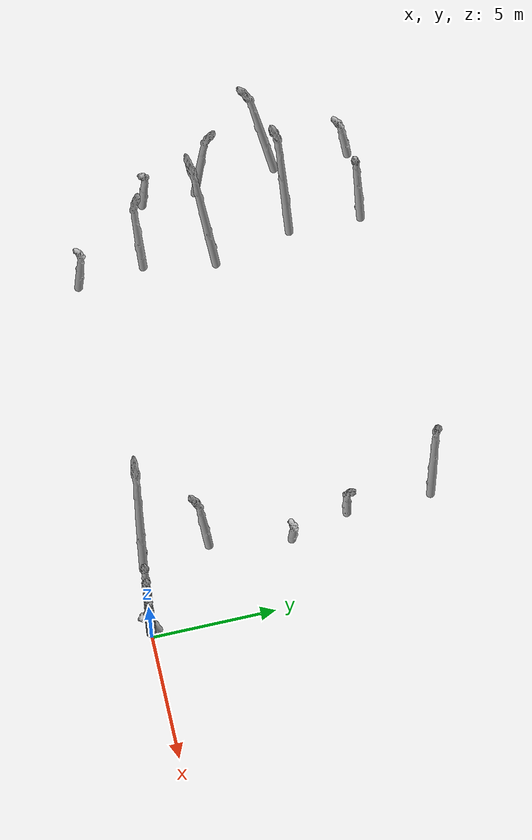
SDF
<sdf version="1.6">
 <world name="default">
  <model name="asparagus_16">
   <pose>-2.80659 0.235628 0 0.02262 0.093811 -3.13579</pose>
   <static>1</static>
   <link name="asparagus_16">
    <visual name="visual">
     <geometry>
      <mesh><uri>model://Asparagus/meshes/asparagus.obj</uri><scale>0.4 0.4 0.559083</scale></mesh>
     </geometry>
    </visual>
    <collision name="collision">
     <geometry>
      <mesh><uri>model://Asparagus/meshes/asparagus.obj</uri><scale>0.4 0.4 0.559083</scale></mesh>
     </geometry>
    </collision>
   </link>
  </model>
  <model name="asparagus_18">
   <pose>-17.7726 3.28789 0 -0.066418 -0.045655 -1.25904</pose>
   <static>1</static>
   <link name="asparagus_18">
    <visual name="visual">
     <geometry>
      <mesh><uri>model://Asparagus/meshes/asparagus.obj</uri><scale>0.4 0.4 0.215047</scale></mesh>
     </geometry>
    </visual>
    <collision name="collision">
     <geometry>
      <mesh><uri>model://Asparagus/meshes/asparagus.obj</uri><scale>0.4 0.4 0.215047</scale></mesh>
     </geometry>
    </collision>
   </link>
  </model>
  <model name="asparagus_19">
   <pose>-3.20755 2.90293 0 -0.093809 -0.000767 -2.08216</pose>
   <static>1</static>
   <link name="asparagus_19">
    <visual name="visual">
     <geometry>
      <mesh><uri>model://Asparagus/meshes/asparagus.obj</uri><scale>0.4 0.4 0.515257</scale></mesh>
     </geometry>
    </visual>
    <collision name="collision">
     <geometry>
      <mesh><uri>model://Asparagus/meshes/asparagus.obj</uri><scale>0.4 0.4 0.515257</scale></mesh>
     </geometry>
    </collision>
   </link>
  </model>
  <model name="asparagus_21">
   <pose>-17.8188 5.71823 0 -0.03023 0.088462 1.49563</pose>
   <static>1</static>
   <link name="asparagus_21">
    <visual name="visual">
     <geometry>
      <mesh><uri>model://Asparagus/meshes/asparagus.obj</uri><scale>0.4 0.4 0.30633</scale></mesh>
     </geometry>
    </visual>
    <collision name="collision">
     <geometry>
      <mesh><uri>model://Asparagus/meshes/asparagus.obj</uri><scale>0.4 0.4 0.30633</scale></mesh>
     </geometry>
    </collision>
   </link>
  </model>
  <model name="asparagus_22">
   <pose>-2.79717 6.21891 0 0.069859 -0.037461 -2.60703</pose>
   <static>1</static>
   <link name="asparagus_22">
    <visual name="visual">
     <geometry>
      <mesh><uri>model://Asparagus/meshes/asparagus.obj</uri><scale>0.4 0.4 0.091202</scale></mesh>
     </geometry>
    </visual>
    <collision name="collision">
     <geometry>
      <mesh><uri>model://Asparagus/meshes/asparagus.obj</uri><scale>0.4 0.4 0.091202</scale></mesh>
     </geometry>
    </collision>
   </link>
  </model>
  <model name="asparagus_24">
   <pose>-18.1484 8.92605 0 -0.004855 0.11762 -1.50476</pose>
   <static>1</static>
   <link name="asparagus_24">
    <visual name="visual">
     <geometry>
      <mesh><uri>model://Asparagus/meshes/asparagus.obj</uri><scale>0.4 0.4 0.49884</scale></mesh>
     </geometry>
    </visual>
    <collision name="collision">
     <geometry>
      <mesh><uri>model://Asparagus/meshes/asparagus.obj</uri><scale>0.4 0.4 0.49884</scale></mesh>
     </geometry>
    </collision>
   </link>
  </model>
  <model name="asparagus_25">
   <pose>-3.24492 8.76295 0 0.163788 -0.027184 1.316</pose>
   <static>1</static>
   <link name="asparagus_25">
    <visual name="visual">
     <geometry>
      <mesh><uri>model://Asparagus/meshes/asparagus.obj</uri><scale>0.4 0.4 0.403691</scale></mesh>
     </geometry>
    </visual>
    <collision name="collision">
     <geometry>
      <mesh><uri>model://Asparagus/meshes/asparagus.obj</uri><scale>0.4 0.4 0.403691</scale></mesh>
     </geometry>
    </collision>
   </link>
  </model>
  <model name="asparagus_27">
   <pose>-18.2442 12.0421 0 -0.078734 0.0665 -2.2874</pose>
   <static>1</static>
   <link name="asparagus_27">
    <visual name="visual">
     <geometry>
      <mesh><uri>model://Asparagus/meshes/asparagus.obj</uri><scale>0.4 0.4 0.202021</scale></mesh>
     </geometry>
    </visual>
    <collision name="collision">
     <geometry>
      <mesh><uri>model://Asparagus/meshes/asparagus.obj</uri><scale>0.4 0.4 0.202021</scale></mesh>
     </geometry>
    </collision>
   </link>
  </model>
  <model name="asparagus_28">
   <pose>-3.17023 12.0849 0 -0.027316 -0.131638 0.067962</pose>
   <static>1</static>
   <link name="asparagus_28">
    <visual name="visual">
     <geometry>
      <mesh><uri>model://Asparagus/meshes/asparagus.obj</uri><scale>0.4 0.4 0.356701</scale></mesh>
     </geometry>
    </visual>
    <collision name="collision">
     <geometry>
      <mesh><uri>model://Asparagus/meshes/asparagus.obj</uri><scale>0.4 0.4 0.356701</scale></mesh>
     </geometry>
    </collision>
   </link>
  </model>
  <model name="asparagus_45">
   <pose>-14.9297 0.02466 0 0.205452 -0.084747 -1.88087</pose>
   <static>1</static>
   <link name="asparagus_45">
    <visual name="visual">
     <geometry>
      <mesh><uri>model://Asparagus/meshes/asparagus.obj</uri><scale>0.4 0.4 0.147883</scale></mesh>
     </geometry>
    </visual>
    <collision name="collision">
     <geometry>
      <mesh><uri>model://Asparagus/meshes/asparagus.obj</uri><scale>0.4 0.4 0.147883</scale></mesh>
     </geometry>
    </collision>
   </link>
  </model>
  <model name="asparagus_46">
   <pose>-0.13464 0.248518 0 0.107476 0.083987 -0.565875</pose>
   <static>1</static>
   <link name="asparagus_46">
    <visual name="visual">
     <geometry>
      <mesh><uri>model://Asparagus/meshes/asparagus.obj</uri><scale>0.4 0.4 0.187958</scale></mesh>
     </geometry>
    </visual>
    <collision name="collision">
     <geometry>
      <mesh><uri>model://Asparagus/meshes/asparagus.obj</uri><scale>0.4 0.4 0.187958</scale></mesh>
     </geometry>
    </collision>
   </link>
  </model>
  <model name="asparagus_48">
   <pose>-15.1796 2.99558 0 -0.154281 0.034167 1.94156</pose>
   <static>1</static>
   <link name="asparagus_48">
    <visual name="visual">
     <geometry>
      <mesh><uri>model://Asparagus/meshes/asparagus.obj</uri><scale>0.4 0.4 0.289704</scale></mesh>
     </geometry>
    </visual>
    <collision name="collision">
     <geometry>
      <mesh><uri>model://Asparagus/meshes/asparagus.obj</uri><scale>0.4 0.4 0.289704</scale></mesh>
     </geometry>
    </collision>
   </link>
  </model>
  <model name="asparagus_51">
   <pose>-14.7179 5.79196 0 -0.061422 0.037823 -2.77273</pose>
   <static>1</static>
   <link name="asparagus_51">
    <visual name="visual">
     <geometry>
      <mesh><uri>model://Asparagus/meshes/asparagus.obj</uri><scale>0.4 0.4 0.584796</scale></mesh>
     </geometry>
    </visual>
    <collision name="collision">
     <geometry>
      <mesh><uri>model://Asparagus/meshes/asparagus.obj</uri><scale>0.4 0.4 0.584796</scale></mesh>
     </geometry>
    </collision>
   </link>
  </model>
  <model name="asparagus_54">
   <pose>-15.2652 8.93684 0 0.071525 -0.002104 -0.921355</pose>
   <static>1</static>
   <link name="asparagus_54">
    <visual name="visual">
     <geometry>
      <mesh><uri>model://Asparagus/meshes/asparagus.obj</uri><scale>0.4 0.4 0.546899</scale></mesh>
     </geometry>
    </visual>
    <collision name="collision">
     <geometry>
      <mesh><uri>model://Asparagus/meshes/asparagus.obj</uri><scale>0.4 0.4 0.546899</scale></mesh>
     </geometry>
    </collision>
   </link>
  </model>
  <model name="asparagus_57">
   <pose>-15.2153 11.9705 0 0.062086 -0.028528 -0.370075</pose>
   <static>1</static>
   <link name="asparagus_57">
    <visual name="visual">
     <geometry>
      <mesh><uri>model://Asparagus/meshes/asparagus.obj</uri><scale>0.4 0.4 0.342744</scale></mesh>
     </geometry>
    </visual>
    <collision name="collision">
     <geometry>
      <mesh><uri>model://Asparagus/meshes/asparagus.obj</uri><scale>0.4 0.4 0.342744</scale></mesh>
     </geometry>
    </collision>
   </link>
  </model>
  <model name="asparagus_63">
   <static>1</static>
   <link name="asparagus_63">
    <visual name="visual">
     <geometry>
      <mesh><uri>model://Asparagus/meshes/asparagus.obj</uri><scale>0.4 0.4 0.090556</scale></mesh>
     </geometry>
    </visual>
    <collision name="collision">
     <geometry>
      <mesh><uri>model://Asparagus/meshes/asparagus.obj</uri><scale>0.4 0.4 0.090556</scale></mesh>
     </geometry>
    </collision>
   </link>
  </model>
  <model name="asparagus_64">
   <static>1</static>
   <link name="asparagus_64">
    <visual name="visual">
     <geometry>
      <mesh><uri>model://Asparagus/meshes/asparagus.obj</uri><scale>0.4 0.4 0.480404</scale></mesh>
     </geometry>
    </visual>
    <collision name="collision">
     <geometry>
      <mesh><uri>model://Asparagus/meshes/asparagus.obj</uri><scale>0.4 0.4 0.480404</scale></mesh>
     </geometry>
    </collision>
   </link>
  </model>
  <model name="asparagus_65">
   <static>1</static>
   <link name="asparagus_65">
    <visual name="visual">
     <geometry>
      <mesh><uri>model://Asparagus/meshes/asparagus.obj</uri><scale>0.4 0.4 0.312895</scale></mesh>
     </geometry>
    </visual>
    <collision name="collision">
     <geometry>
      <mesh><uri>model://Asparagus/meshes/asparagus.obj</uri><scale>0.4 0.4 0.312895</scale></mesh>
     </geometry>
    </collision>
   </link>
  </model>
  <model name="asparagus_66">
   <static>1</static>
   <link name="asparagus_66">
    <visual name="visual">
     <geometry>
      <mesh><uri>model://Asparagus/meshes/asparagus.obj</uri><scale>0.4 0.4 0.400207</scale></mesh>
     </geometry>
    </visual>
    <collision name="collision">
     <geometry>
      <mesh><uri>model://Asparagus/meshes/asparagus.obj</uri><scale>0.4 0.4 0.400207</scale></mesh>
     </geometry>
    </collision>
   </link>
  </model>
  <model name="asparagus_67">
   <static>1</static>
   <link name="asparagus_67">
    <visual name="visual">
     <geometry>
      <mesh><uri>model://Asparagus/meshes/asparagus.obj</uri><scale>0.4 0.4 0.350702</scale></mesh>
     </geometry>
    </visual>
    <collision name="collision">
     <geometry>
      <mesh><uri>model://Asparagus/meshes/asparagus.obj</uri><scale>0.4 0.4 0.350702</scale></mesh>
     </geometry>
    </collision>
   </link>
  </model>
  <model name="asparagus_68">
   <static>1</static>
   <link name="asparagus_68">
    <visual name="visual">
     <geometry>
      <mesh><uri>model://Asparagus/meshes/asparagus.obj</uri><scale>0.4 0.4 0.42996</scale></mesh>
     </geometry>
    </visual>
    <collision name="collision">
     <geometry>
      <mesh><uri>model://Asparagus/meshes/asparagus.obj</uri><scale>0.4 0.4 0.42996</scale></mesh>
     </geometry>
    </collision>
   </link>
  </model>
  <model name="asparagus_69">
   <static>1</static>
   <link name="asparagus_69">
    <visual name="visual">
     <geometry>
      <mesh><uri>model://Asparagus/meshes/asparagus.obj</uri><scale>0.4 0.4 0.211601</scale></mesh>
     </geometry>
    </visual>
    <collision name="collision">
     <geometry>
      <mesh><uri>model://Asparagus/meshes/asparagus.obj</uri><scale>0.4 0.4 0.211601</scale></mesh>
     </geometry>
    </collision>
   </link>
  </model>
  <model name="asparagus_70">
   <static>1</static>
   <link name="asparagus_70">
    <visual name="visual">
     <geometry>
      <mesh><uri>model://Asparagus/meshes/asparagus.obj</uri><scale>0.4 0.4 0.259019</scale></mesh>
     </geometry>
    </visual>
    <collision name="collision">
     <geometry>
      <mesh><uri>model://Asparagus/meshes/asparagus.obj</uri><scale>0.4 0.4 0.259019</scale></mesh>
     </geometry>
    </collision>
   </link>
  </model>
  <model name="asparagus_71">
   <static>1</static>
   <link name="asparagus_71">
    <visual name="visual">
     <geometry>
      <mesh><uri>model://Asparagus/meshes/asparagus.obj</uri><scale>0.4 0.4 0.589483</scale></mesh>
     </geometry>
    </visual>
    <collision name="collision">
     <geometry>
      <mesh><uri>model://Asparagus/meshes/asparagus.obj</uri><scale>0.4 0.4 0.589483</scale></mesh>
     </geometry>
    </collision>
   </link>
  </model>
  <model name="asparagus_72">
   <static>1</static>
   <link name="asparagus_72">
    <visual name="visual">
     <geometry>
      <mesh><uri>model://Asparagus/meshes/asparagus.obj</uri><scale>0.4 0.4 0.144562</scale></mesh>
     </geometry>
    </visual>
    <collision name="collision">
     <geometry>
      <mesh><uri>model://Asparagus/meshes/asparagus.obj</uri><scale>0.4 0.4 0.144562</scale></mesh>
     </geometry>
    </collision>
   </link>
  </model>
  <model name="asparagus_73">
   <static>1</static>
   <link name="asparagus_73">
    <visual name="visual">
     <geometry>
      <mesh><uri>model://Asparagus/meshes/asparagus.obj</uri><scale>0.4 0.4 0.055492</scale></mesh>
     </geometry>
    </visual>
    <collision name="collision">
     <geometry>
      <mesh><uri>model://Asparagus/meshes/asparagus.obj</uri><scale>0.4 0.4 0.055492</scale></mesh>
     </geometry>
    </collision>
   </link>
  </model>
  <model name="asparagus_74">
   <static>1</static>
   <link name="asparagus_74">
    <visual name="visual">
     <geometry>
      <mesh><uri>model://Asparagus/meshes/asparagus.obj</uri><scale>0.4 0.4 0.382924</scale></mesh>
     </geometry>
    </visual>
    <collision name="collision">
     <geometry>
      <mesh><uri>model://Asparagus/meshes/asparagus.obj</uri><scale>0.4 0.4 0.382924</scale></mesh>
     </geometry>
    </collision>
   </link>
  </model>
 </world>
</sdf>
